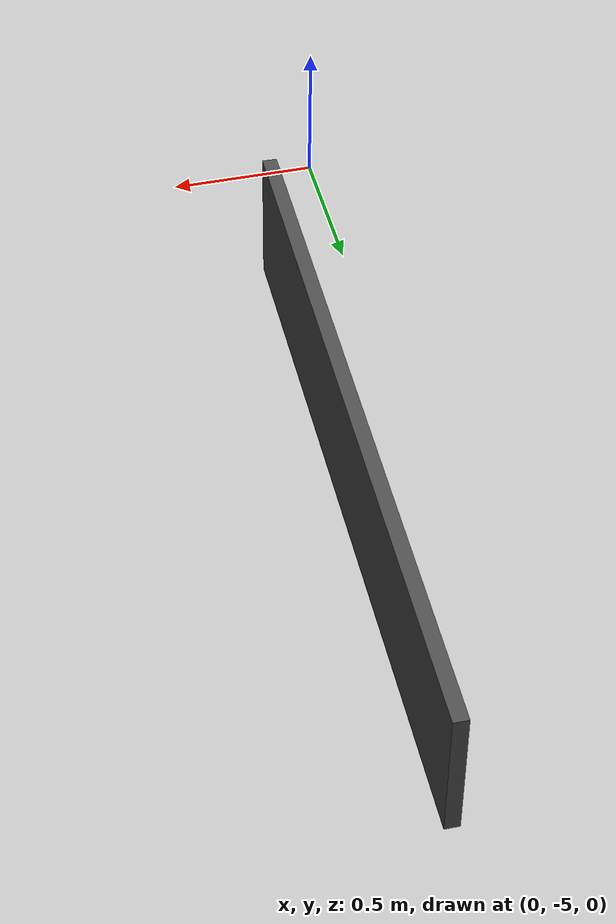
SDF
<?xml version='1.0'?>
<sdf version='1.7'>
  <model name='parede_5m5_02'>
    <pose>0.711496 -3.02246 0 0 -0 0</pose>
    <link name='Wall_12'>
      <collision name='Wall_12_Collision'>
        <geometry>
          <box>
            <size>2.5 0.05 0.5</size>
          </box>
        </geometry>
        <pose>0 0 0 0 -0 0</pose>
      </collision>
      <visual name='Wall_12_Visual'>
        <pose>0 0 0 0 -0 0</pose>
        <geometry>
          <box>
            <size>2.5 0.05 0.5</size>
          </box>
        </geometry>
        <material>
          <script>
            <uri>file://media/materials/scripts/gazebo.material</uri>
            <name>Gazebo/DarkGrey</name>
          </script>
          <ambient>1 1 1 1</ambient>
        </material>
        <meta>
          <layer>0</layer>
        </meta>
      </visual>
      <pose>-0.5 -0.5 0 0 0 -1.58</pose>
    </link>
    <static>1</static>
  </model>
</sdf>
